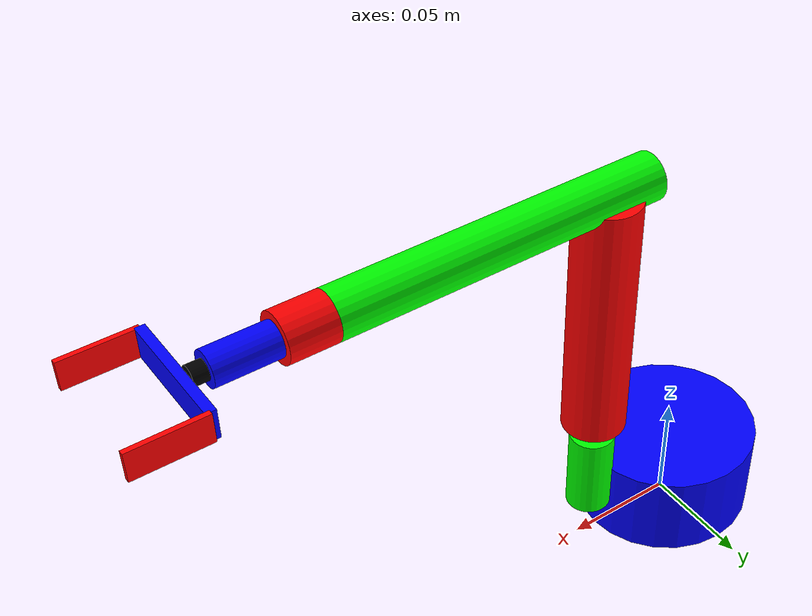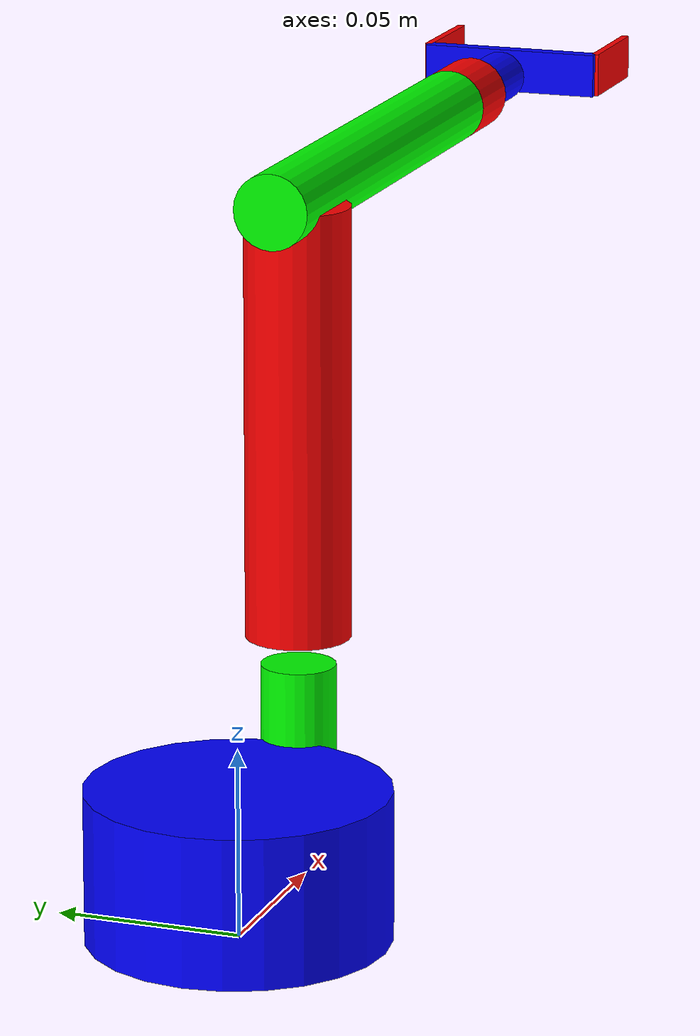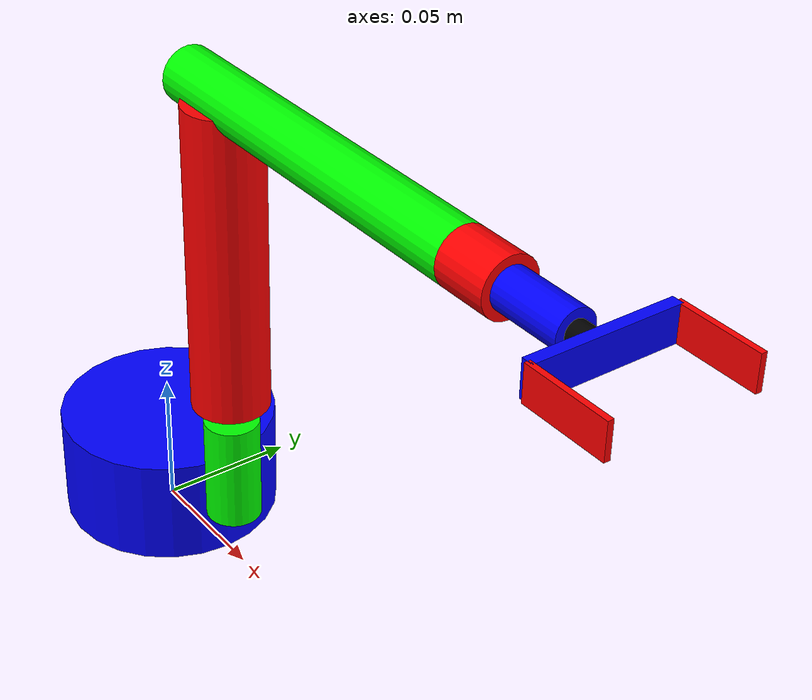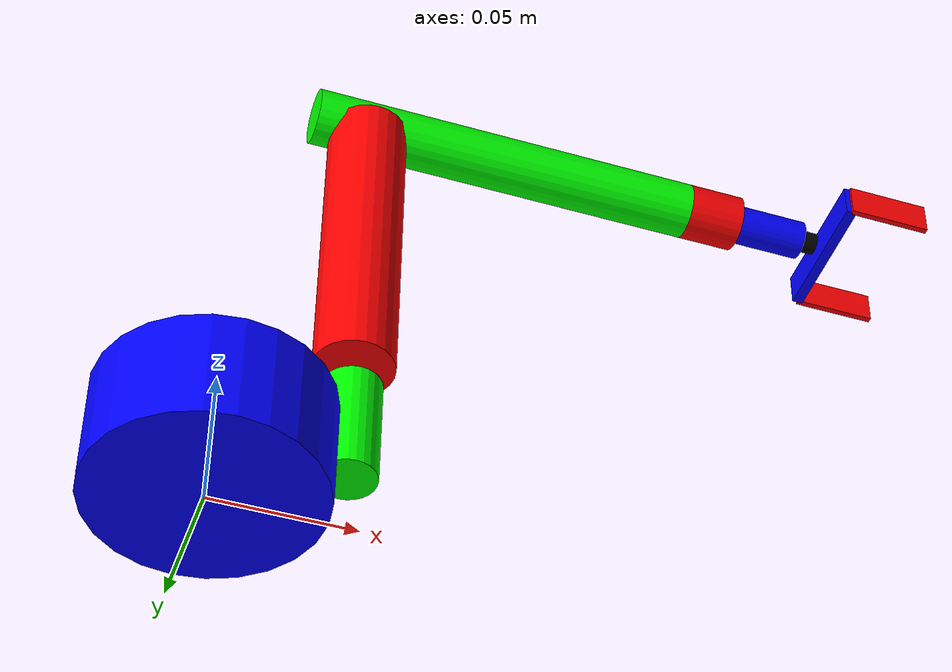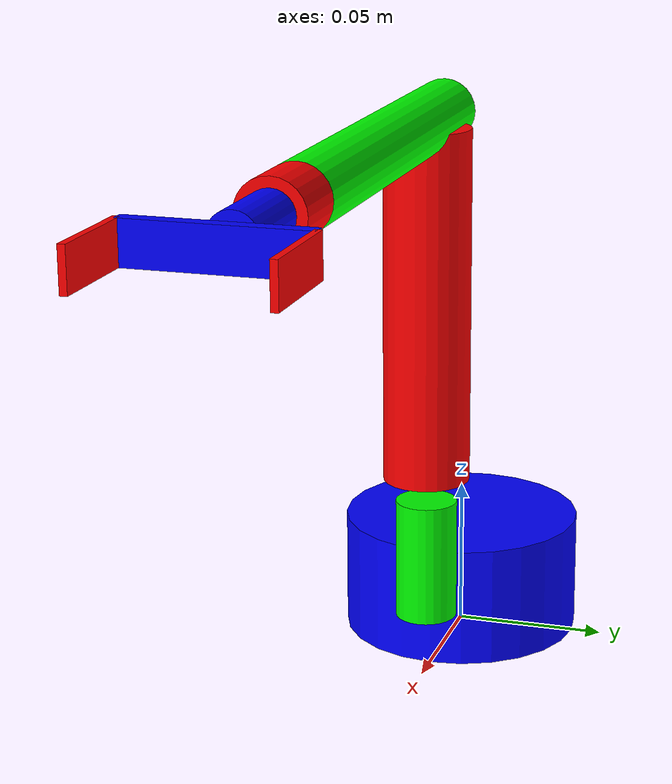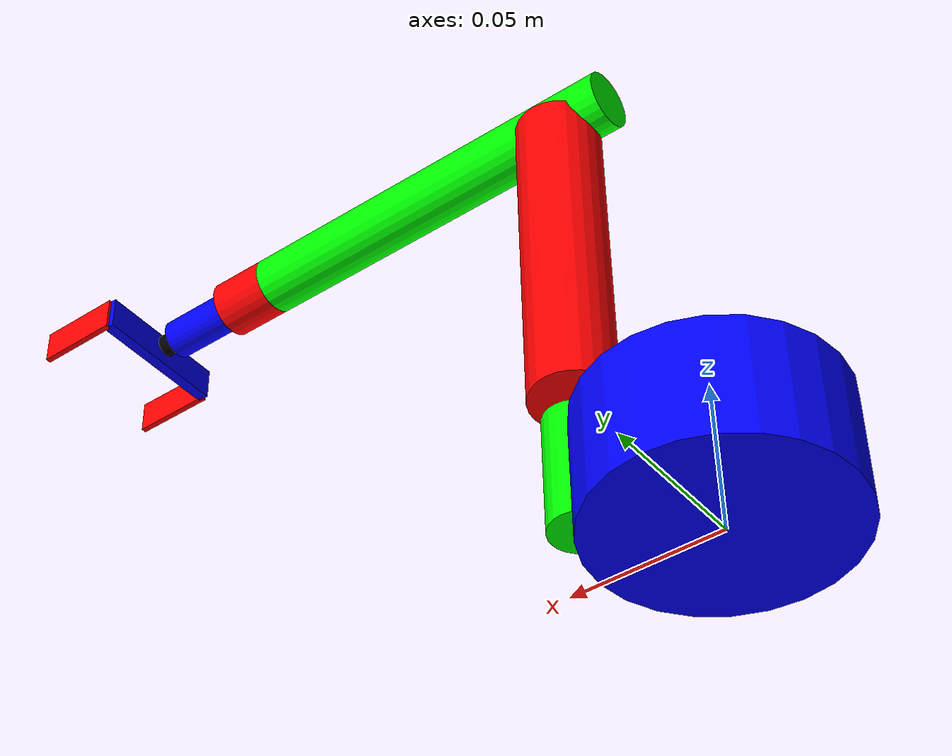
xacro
<?xml version='1.0'?>

<robot name="generic_arm" xmlns:xacro="http://www.ros.org/wiki/xacro">

  <!-- Common design Properties-->
  <xacro:include filename="$(find arm_description)/urdf/robots/generic_arm/configuration.urdf.xacro" />

  <!-- If we use simulation include Gazebo Stuff - gazebo_ros_control -->
  <xacro:if value="$(arg sim)">

      <!-- Gazebo ros control && gazebo grasp plugin -->
      <xacro:include filename="$(find arm_description)/urdf/robots/generic_arm/generic_arm_robot.gazebo.xacro" />

  </xacro:if>

  <!-- Incude Inertia macros -->
  <xacro:include filename="$(find arm_description)/urdf/macros/inertia_macros.urdf.xacro" />

  <!-- Include Generic Arm -->
  <xacro:include filename="$(find arm_description)/urdf/arms/generic_arm/generic_arm.urdf.xacro" />

  <!-- Include Generic Gripper -->
  <xacro:include filename="$(find arm_description)/urdf/grippers/generic_gripper/generic_gripper.urdf.xacro" />

  <link name="world"/>

  <!-- Instanciate the Generic Arm macros -->

  <!-- connect arm -->
  <xacro:generic_arm
    prefix=""
    parent="${generic_arm_parent}"
    transmission_hw_interface="${transmission_hw_interface}"
    safety_limits="${safety_limits}"
    safety_pos_margin="${safety_pos_margin}"
    safety_k_position="${safety_k_position}"/>

  <!-- connect gripper-->
  <xacro:generic_gripper
    prefix=""
    parent="${generic_gripper_parent}"
    transmission_hw_interface="${transmission_hw_interface}"
    safety_limits="${safety_limits}"
    safety_pos_margin="${safety_pos_margin}"
    safety_k_position="${safety_k_position}"/>

</robot>

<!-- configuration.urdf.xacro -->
<robot xmlns:xacro="http://www.ros.org/wiki/xacro">

  <!-- Include or Not Gazebo Files-->
  <xacro:arg name="sim" default="true"/>

  <!-- PI Value -->
  <xacro:property name="M_PI" value="3.141592653" />

  <xacro:property name="prefix" value="" />

  <!-- Hardware Interface e.g Pos Eff -->
  <xacro:property name="transmission_hw_interface" value="hardware_interface/PositionJointInterface" />

  <!-- enable safety limits -->
  <xacro:property name="safety_limits" value="false" />
  <xacro:property name="safety_pos_margin" value="0.15" />
  <xacro:property name="safety_k_position" value="20" />

  <!-- Generic Arm Connect -->
  <xacro:property name="generic_arm_parent" value="world" />
  <xacro:property name="generic_arm_joint_origin">
    <origin xyz="0.0 0.0 0.0" rpy="0 0 0" />
  </xacro:property>

  <!-- Generic Gripper Connect -->
  <xacro:property name="generic_gripper_parent" value="wrist_3_link" />

  <!-- Inertia parameters -->
  <xacro:property name="use_dummy_inertial" value="false" />
    <!-- Arm -->
    <xacro:property name="arm_base_mass" value="4.0" />
    <xacro:property name="shoulder_mass" value="7.778" />
    <xacro:property name="upper_arm_mass" value="12.93" />
    <xacro:property name="forearm_mass" value="3.87" />
    <xacro:property name="wrist_1_mass" value="1.96" />
    <xacro:property name="wrist_2_mass" value="1.96" />
    <xacro:property name="wrist_3_mass" value="0.202" />
    <!-- Gripper -->
    <xacro:property name="ee_base_mass" value="0.1" />
    <xacro:property name="finger1_mass" value="0.1" />
    <xacro:property name="finger2_mass" value="0.1" />

  <!-- Link sizes -->

  <!-- Factor to reduce the collision dimensions by -->
  <xacro:property name="collision_factor" value="0.5" />

    <!-- Arm -->
    <xacro:property name="arm_base_length" value="0.04" />
    <xacro:property name="arm_base_radius" value="0.04" />

    <xacro:property name="shoulder_length" value="0.04" />
    <xacro:property name="shoulder_radius" value="0.01" />

    <xacro:property name="upper_arm_length" value="0.115" />
    <xacro:property name="upper_arm_radius" value="0.014" />

    <xacro:property name="forearm_length" value="0.142" />
    <xacro:property name="forearm_radius" value="0.01" />

    <xacro:property name="wrist_1_length" value="0.02" />
    <xacro:property name="wrist_1_radius" value="0.01" />

    <xacro:property name="wrist_2_length" value="0.026" />
    <xacro:property name="wrist_2_radius" value="0.007" />

    <xacro:property name="wrist_3_length" value="0.006" />
    <xacro:property name="wrist_3_radius" value="0.004" />

    <!-- Gripper -->
    <xacro:property name="ee_base_x" value="0.012" />
    <xacro:property name="ee_base_y" value="0.004" />
    <xacro:property name="ee_base_z" value="0.05" />

    <xacro:property name="finger1_x" value="0.012" />
    <xacro:property name="finger1_y" value="0.002" />
    <xacro:property name="finger1_z" value="0.03" />

    <xacro:property name="finger2_x" value="0.012" />
    <xacro:property name="finger2_y" value="0.002" />
    <xacro:property name="finger2_z" value="0.03" />

  <!-- Arm Limits -->
  <xacro:property name="shoulder_pan_lower_limit" value="${-M_PI/2}" />
  <xacro:property name="shoulder_pan_upper_limit" value="${M_PI/2}" />
  <xacro:property name="shoulder_lift_lower_limit" value="${-M_PI/2}" />
  <xacro:property name="shoulder_lift_upper_limit" value="${M_PI/2}" />
  <xacro:property name="elbow_lower_limit" value="${-M_PI/4}" /> <!--LIMIT FOR DEPEDETED SERVO-->
  <xacro:property name="elbow_upper_limit" value="${M_PI/4}" />
  <xacro:property name="wrist_1_upper_limit" value="${M_PI/2}" />
  <xacro:property name="wrist_1_lower_limit" value="${-M_PI/2}" />
  <xacro:property name="wrist_2_upper_limit" value="${M_PI/2}" />
  <xacro:property name="wrist_2_lower_limit" value="${-M_PI/2}" />
  <xacro:property name="wrist_3_upper_limit" value="${M_PI/2}" />
  <xacro:property name="wrist_3_lower_limit" value="${-M_PI/2}" />

  <!-- Gripper Limits -->
  <xacro:property name="finger1_lower_limit" value="0.0" />
  <xacro:property name="finger1_upper_limit" value="0.025" />
  <xacro:property name="finger2_lower_limit" value="0.0" />
  <xacro:property name="finger2_upper_limit" value="0.025" />

  <!-- Arm Joint Axis -->
  <xacro:property name="shoulder_pan_joint_axis">
    <axis xyz="0 0 1"/>
  </xacro:property>
  <xacro:property name="shoulder_lift_joint_axis">
    <axis xyz="0 1 0"/>
  </xacro:property>
  <xacro:property name="elbow_joint_axis">
    <axis xyz="0 1 0"/>
  </xacro:property>
  <xacro:property name="wrist_1_joint_axis">
    <axis xyz="0 0 1"/>
  </xacro:property>
  <xacro:property name="wrist_2_joint_axis">
    <axis xyz="0 1 0"/>
  </xacro:property>
  <xacro:property name="wrist_3_joint_axis">
    <axis xyz="0 0 1"/>
  </xacro:property>

  <!-- Gripper Joint Axis -->
  <xacro:property name="finger1_joint_axis">
    <axis xyz="0 1 0"/>
  </xacro:property>
  <xacro:property name="finger2_joint_axis">
    <axis xyz="0 1 0"/>
  </xacro:property>

  <!-- Arm Origings -->
  <xacro:property name="arm_base_origin">
    <origin xyz="0.0 0.0 0.02" rpy="0 0 0" />
  </xacro:property>
  <xacro:property name="arm_base_joint_origin">
    <origin xyz="0.0 0.0 0.0" rpy="0 0 0" />
  </xacro:property>

  <xacro:property name="shoulder_origin">
    <origin xyz="0.045 0.0 0.02" rpy="0 0 0" />
  </xacro:property>
  <xacro:property name="shoulder_pan_joint_origin">
    <origin xyz="0.0 0.0 0.02" rpy="0 0 0" />
  </xacro:property>

  <xacro:property name="upper_arm_origin">
    <origin xyz="0.0 0.0 0.05525" rpy="0 0 0" />
  </xacro:property>
  <xacro:property name="shoulder_lift_joint_origin">
    <origin xyz="0.045 0.0 0.05" rpy="0 0 0" />
  </xacro:property>

  <xacro:property name="forearm_origin">
    <origin xyz="0.0 0.0 0.071" rpy="0 0 0" />
  </xacro:property>
  <xacro:property name="elbow_joint_origin">
    <origin xyz="-0.02 0.0 0.115" rpy="0 1.570 0" />
  </xacro:property>

  <xacro:property name="wrist_1_origin">
    <origin xyz="0.0 0.0 0.01" rpy="0 0 0" />
  </xacro:property>
  <xacro:property name="wrist_1_joint_origin">
    <origin xyz="0.0 0.0 0.142" rpy="0 0 0" />
  </xacro:property>

  <xacro:property name="wrist_2_origin">
    <origin xyz="0.0 0.0 0.013" rpy="0 0 0" />
  </xacro:property>
  <xacro:property name="wrist_2_joint_origin">
    <origin xyz="0.0 0.0 0.02" rpy="0 0 0" />
  </xacro:property>

  <xacro:property name="wrist_3_origin">
    <origin xyz="0.0 0.0 0.003" rpy="0 0 0" />
  </xacro:property>
  <xacro:property name="wrist_3_joint_origin">
    <origin xyz="0.0 0.0 0.026" rpy="0 0 0" />
  </xacro:property>

  <!-- Gripper Origings -->
  <xacro:property name="ee_base_origin">
    <origin xyz="0.0 0.0 0.004" rpy="${M_PI/2} 0 0" />
  </xacro:property>
  <xacro:property name="ee_base_joint_origin">
    <origin xyz="0.0 0.0 0.006" rpy="0 0 0" />
  </xacro:property>

  <xacro:property name="finger1_origin">
    <origin xyz="0.0 0.0 0.015" rpy="0 0 0" />
  </xacro:property>
  <xacro:property name="finger1_joint_origin">
    <origin xyz="0.0 -0.025 0.004" rpy="0 0 0" />
  </xacro:property>

  <xacro:property name="finger2_origin">
    <origin xyz="0.0 0.0 0.015" rpy="0 0 0" />
  </xacro:property>
  <xacro:property name="finger2_joint_origin">
    <origin xyz="0.0 0.025 0.004" rpy="0 0 ${M_PI}" />
  </xacro:property>

</robot>

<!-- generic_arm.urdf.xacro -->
<robot xmlns:xacro="http://www.ros.org/wiki/xacro">

  <!-- Include Inertia Macros -->
  <xacro:include filename="$(find arm_description)/urdf/macros/inertia_macros.urdf.xacro" />

  <!-- Include Transmissions -->
  <xacro:include filename="$(find arm_description)/urdf/arms/generic_arm/generic_arm.transmissions.xacro" />

  <!-- Instantiate Transmissions -->
  <xacro:generic_arm_transmission prefix="${prefix}" hw_interface="${transmission_hw_interface}" />

  <!-- If we use simulation include Gazebo Stuff -->
  <xacro:if value="$(arg sim)">

      <!-- Gazebo link properties -->
      <xacro:include filename="$(find arm_description)/urdf/arms/generic_arm/generic_arm.gazebo.xacro" />
      <!-- Instantiate it -->
      <xacro:generic_arm_gazebo prefix="${prefix}" />

  </xacro:if>

<!--Macro of the arm -->

<xacro:macro name="generic_arm" params="prefix parent
  transmission_hw_interface:=hardware_interface/PositionJointInterface
  safety_limits:=false safety_pos_margin:=0.15
  safety_k_position:=20">

  <link name="arm_footprint"/>

  <joint name="arm_joint" type="fixed">
    <parent link="${parent}"/>
    <child link="arm_footprint"/>
    <xacro:insert_block name="generic_arm_joint_origin" />
  </joint>

  <link name="${prefix}arm_base" >

    <visual>
      <xacro:insert_block name="arm_base_origin" />
      <geometry>
        <cylinder length = "${arm_base_length}" radius="${arm_base_radius}"/>
      </geometry>
      <material name="Blue">
        <color rgba="0.0 0.0 1.0 1.0"/>
      </material>
    </visual>

    <collision>
      <xacro:insert_block name="arm_base_origin" />
      <geometry>
        <cylinder length = "${arm_base_length * collision_factor}" radius="${arm_base_radius * collision_factor}"/>
      </geometry>
    </collision>
    <xacro:if value="${use_dummy_inertial}">
      <xacro:inertial_dummy>
        <xacro:insert_block name="arm_base_origin" />
      </xacro:inertial_dummy>
    </xacro:if>
    <xacro:unless value="${use_dummy_inertial}">
      <xacro:cylinder_inertial length = "${arm_base_length}" radius="${arm_base_radius}" mass="${arm_base_mass}">
        <xacro:insert_block name="arm_base_origin" />
      </xacro:cylinder_inertial>
    </xacro:unless>
  </link>

  <joint name="arm_footprint_joint" type="fixed">
    <parent link="arm_footprint"/>
    <child link="arm_base"/>
    <xacro:insert_block name="arm_base_joint_origin" />
  </joint>

  <!-- SHOULDER -->

  <link name="${prefix}shoulder_link" >
    <visual>
      <xacro:insert_block name="shoulder_origin" />
      <geometry>
        <cylinder length = "${shoulder_length}" radius="${shoulder_radius}"/>
      </geometry>
      <material name="Green">
        <color rgba="0.0 1.0 0.0 1.0"/>
      </material>
    </visual>
    <collision>
      <xacro:insert_block name="shoulder_origin" />
      <geometry>
        <cylinder length = "${shoulder_length * collision_factor}" radius="${shoulder_radius * collision_factor}"/>
      </geometry>
    </collision>
    <xacro:if value="${use_dummy_inertial}">
      <xacro:inertial_dummy>
        <xacro:insert_block name="shoulder_origin" />
      </xacro:inertial_dummy>
    </xacro:if>
    <xacro:unless value="${use_dummy_inertial}">
      <xacro:cylinder_inertial length = "${shoulder_length}" radius="${shoulder_radius}" mass="${shoulder_mass}">
        <xacro:insert_block name="shoulder_origin" />
      </xacro:cylinder_inertial>
    </xacro:unless>
  </link>

  <joint name="${prefix}shoulder_pan_joint" type="revolute">
    <parent link="${prefix}arm_base" />
    <child link = "${prefix}shoulder_link" />
    <xacro:insert_block name="shoulder_pan_joint_origin" />
    <xacro:insert_block name="shoulder_pan_joint_axis" />
    <limit lower="${shoulder_pan_lower_limit}" upper="${shoulder_pan_upper_limit}" effort="330.0" velocity="2.16"/>
    <xacro:if value="${safety_limits}">
      <safety_controller soft_lower_limit="${shoulder_pan_lower_limit + safety_pos_margin}" soft_upper_limit="${shoulder_pan_upper_limit - safety_pos_margin}" k_position="${safety_k_position}" k_velocity="0.0"/>
    </xacro:if>
    <dynamics damping="0.0" friction="0.0"/>
  </joint>

  <!--UPPER ARM -->

  <link name="${prefix}upper_arm_link" >
    <visual>
      <xacro:insert_block name="upper_arm_origin" />
      <geometry>
        <cylinder length = "${upper_arm_length}" radius="${upper_arm_radius}"/>
      </geometry>
      <material name="Red">
        <color rgba="1.0 0.0 0.0 1.0"/>
      </material>
    </visual>
    <collision>
      <xacro:insert_block name="upper_arm_origin" />
      <geometry>
        <cylinder length = "${upper_arm_length * collision_factor}" radius="${upper_arm_radius * collision_factor}"/>
      </geometry>
    </collision>
    <xacro:if value="${use_dummy_inertial}">
      <xacro:inertial_dummy>
        <xacro:insert_block name="upper_arm_origin" />
      </xacro:inertial_dummy>
    </xacro:if>
    <xacro:unless value="${use_dummy_inertial}">
      <xacro:cylinder_inertial length = "${upper_arm_length}" radius="${upper_arm_radius}" mass="${upper_arm_mass}">
        <xacro:insert_block name="upper_arm_origin" />
      </xacro:cylinder_inertial>
    </xacro:unless>
  </link>

  <joint name="${prefix}shoulder_lift_joint" type="revolute">
    <parent link="${prefix}shoulder_link" />
    <child link = "${prefix}upper_arm_link" />
    <xacro:insert_block name="shoulder_lift_joint_origin" />
    <xacro:insert_block name="shoulder_lift_joint_axis" />
    <limit lower="${shoulder_lift_lower_limit}" upper="${shoulder_lift_upper_limit}" effort="330.0" velocity="2.16"/>
    <xacro:if value="${safety_limits}">
      <safety_controller soft_lower_limit="${shoulder_lift_lower_limit + safety_pos_margin}" soft_upper_limit="${shoulder_lift_upper_limit - safety_pos_margin}" k_position="${safety_k_position}" k_velocity="0.0"/>
    </xacro:if>
    <dynamics damping="0.0" friction="0.0"/>
  </joint>

  <!--FOREARM -->

  <link name="${prefix}forearm_link" >
    <visual>
      <xacro:insert_block name="forearm_origin" />
      <geometry>
        <cylinder length = "${forearm_length}" radius="${forearm_radius}"/>
      </geometry>
      <material name="Green">
        <color rgba="0.0 1.0 0.0 1.0"/>
      </material>
    </visual>
    <collision>
      <xacro:insert_block name="forearm_origin" />
      <geometry>
        <cylinder length = "${forearm_length * collision_factor}" radius="${forearm_radius * collision_factor}"/>
      </geometry>
    </collision>
    <xacro:if value="${use_dummy_inertial}">
      <xacro:inertial_dummy>
        <xacro:insert_block name="forearm_origin" />
      </xacro:inertial_dummy>
    </xacro:if>
    <xacro:unless value="${use_dummy_inertial}">
      <xacro:cylinder_inertial length = "${forearm_length}" radius="${forearm_radius}" mass="${forearm_mass}">
        <xacro:insert_block name="forearm_origin" />
      </xacro:cylinder_inertial>
    </xacro:unless>
  </link>

  <joint name="${prefix}elbow_joint" type="revolute">
    <parent link="${prefix}upper_arm_link" />
    <child link = "${prefix}forearm_link" />
    <xacro:insert_block name="elbow_joint_origin" />
    <xacro:insert_block name="elbow_joint_axis" />
    <limit lower="${elbow_lower_limit}" upper="${elbow_upper_limit}" effort="330.0" velocity="2.16"/>
    <xacro:if value="${safety_limits}">
      <safety_controller soft_lower_limit="${elbow_lower_limit + safety_pos_margin}" soft_upper_limit="${elbow_upper_limit - safety_pos_margin}" k_position="${safety_k_position}" k_velocity="0.0"/>
    </xacro:if>
    <dynamics damping="0.0" friction="0.0"/>
  </joint>

 <!-- Wrist 1 link -->

  <link name="${prefix}wrist_1_link" >
    <visual>
      <xacro:insert_block name="wrist_1_origin" />
      <geometry>
        <cylinder length = "${wrist_1_length}" radius="${wrist_1_radius}"/>
      </geometry>
      <material name="Red">
        <color rgba="1.0 0.0 0.0 1.0"/>
      </material>
    </visual>
    <collision>
      <xacro:insert_block name="wrist_1_origin" />
      <geometry>
        <cylinder length = "${wrist_1_length * collision_factor}" radius="${wrist_1_radius * collision_factor}"/>
      </geometry>
    </collision>
    <xacro:if value="${use_dummy_inertial}">
      <xacro:inertial_dummy>
        <xacro:insert_block name="wrist_1_origin" />
      </xacro:inertial_dummy>
    </xacro:if>
    <xacro:unless value="${use_dummy_inertial}">
      <xacro:cylinder_inertial length = "${wrist_1_length}" radius="${wrist_1_radius}" mass="${wrist_1_mass}">
        <xacro:insert_block name="wrist_1_origin" />
      </xacro:cylinder_inertial>
    </xacro:unless>
  </link>

  <joint name="${prefix}wrist_1_joint" type="revolute">
    <parent link="${prefix}forearm_link" />
    <child link = "${prefix}wrist_1_link" />
    <xacro:insert_block name="wrist_1_joint_origin" />
    <xacro:insert_block name="wrist_1_joint_axis" />
    <limit lower="${wrist_1_lower_limit}" upper="${wrist_1_upper_limit}" effort="330.0" velocity="2.16"/>
    <xacro:if value="${safety_limits}">
      <safety_controller soft_lower_limit="${wrist_1_lower_limit + safety_pos_margin}" soft_upper_limit="${wrist_1_upper_limit - safety_pos_margin}" k_position="${safety_k_position}" k_velocity="0.0"/>
    </xacro:if>
    <dynamics damping="0.0" friction="0.0"/>
  </joint>

 <!-- Wrist 2 link -->

  <link name="${prefix}wrist_2_link" >
    <visual>
      <xacro:insert_block name="wrist_2_origin" />
      <geometry>
        <cylinder length = "${wrist_2_length}" radius="${wrist_2_radius}"/>
      </geometry>
      <material name="Blue">
        <color rgba="0.0 0.0 1.0 1.0"/>
      </material>
    </visual>
    <collision>
      <xacro:insert_block name="wrist_2_origin" />
      <geometry>
        <cylinder length = "${wrist_2_length * collision_factor}" radius="${wrist_2_radius * collision_factor}"/>
      </geometry>
    </collision>
    <xacro:if value="${use_dummy_inertial}">
      <xacro:inertial_dummy>
        <xacro:insert_block name="wrist_2_origin" />
      </xacro:inertial_dummy>
    </xacro:if>
    <xacro:unless value="${use_dummy_inertial}">
      <xacro:cylinder_inertial length = "${wrist_2_length}" radius="${wrist_2_radius}" mass="${wrist_2_mass}">
        <xacro:insert_block name="wrist_2_origin" />
      </xacro:cylinder_inertial>
    </xacro:unless>
  </link>

  <joint name="${prefix}wrist_2_joint" type="revolute">
    <parent link="${prefix}wrist_1_link" />
    <child link = "${prefix}wrist_2_link" />
    <xacro:insert_block name="wrist_2_joint_origin" />
    <xacro:insert_block name="wrist_2_joint_axis" />
    <limit lower="${wrist_2_lower_limit}" upper="${wrist_2_upper_limit}" effort="330.0" velocity="2.16"/>
    <xacro:if value="${safety_limits}">
      <safety_controller soft_lower_limit="${wrist_2_lower_limit + safety_pos_margin}" soft_upper_limit="${wrist_2_upper_limit - safety_pos_margin}" k_position="${safety_k_position}" k_velocity="0.0"/>
    </xacro:if>
    <dynamics damping="0.0" friction="0.0"/>
  </joint>

 <!-- Wrist 3 link -->

  <link name="${prefix}wrist_3_link" >
    <visual>
      <xacro:insert_block name="wrist_3_origin" />
      <geometry>
        <cylinder length = "${wrist_3_length}" radius="${wrist_3_radius}"/>
      </geometry>
      <material name="Black">
        <color rgba="0.0 0.0 0.0 1.0"/>
      </material>
    </visual>
    <collision>
      <xacro:insert_block name="wrist_3_origin" />
      <geometry>
        <cylinder length = "${wrist_3_length * collision_factor}" radius="${wrist_3_radius * collision_factor}"/>
      </geometry>
    </collision>
    <xacro:if value="${use_dummy_inertial}">
      <xacro:inertial_dummy>
        <xacro:insert_block name="wrist_3_origin" />
      </xacro:inertial_dummy>
    </xacro:if>
    <xacro:unless value="${use_dummy_inertial}">
      <xacro:cylinder_inertial length = "${wrist_3_length}" radius="${wrist_3_radius}" mass="${wrist_3_mass}">
        <xacro:insert_block name="wrist_3_origin" />
      </xacro:cylinder_inertial>
    </xacro:unless>
  </link>

  <joint name="${prefix}wrist_3_joint" type="revolute">
    <parent link="${prefix}wrist_2_link" />
    <child link = "${prefix}wrist_3_link" />
    <xacro:insert_block name="wrist_3_joint_origin" />
    <xacro:insert_block name="wrist_3_joint_axis" />
    <limit lower="${wrist_2_lower_limit}" upper="${wrist_2_upper_limit}" effort="330.0" velocity="2.16"/>
    <xacro:if value="${safety_limits}">
      <safety_controller soft_lower_limit="${wrist_2_lower_limit + safety_pos_margin}" soft_upper_limit="${wrist_2_upper_limit - safety_pos_margin}" k_position="${safety_k_position}" k_velocity="0.0"/>
    </xacro:if>
    <dynamics damping="0.0" friction="0.0"/>
  </joint>

</xacro:macro>

</robot>

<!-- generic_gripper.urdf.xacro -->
<robot xmlns:xacro="http://www.ros.org/wiki/xacro">

  <!-- Include Inertia Macros -->
  <xacro:include filename="$(find arm_description)/urdf/macros/inertia_macros.urdf.xacro" />

  <!-- Include Transmissions -->
  <xacro:include filename="$(find arm_description)/urdf/grippers/generic_gripper/generic_gripper.transmissions.xacro" />

  <!-- Instantiate Transmissions -->
  <xacro:generic_gripper_transmission prefix="${prefix}" hw_interface="${transmission_hw_interface}" />

  <!-- If we use simulation include Gazebo Stuff -->
  <xacro:if value="$(arg sim)">

      <!-- Gazebo gripper -->
      <xacro:include filename="$(find arm_description)/urdf/grippers/generic_gripper/generic_gripper.gazebo.xacro" />
       <xacro:generic_gripper_gazebo prefix="${prefix}" />

  </xacro:if>

<xacro:property name="m_ee" value="0.01" />
<xacro:property name="m_f1" value="0.01" />
<xacro:property name="m_f2" value="0.01" />

<xacro:macro name="generic_gripper" params="prefix parent
  transmission_hw_interface:=hardware_interface/PositionJointInterface
  safety_limits:=false safety_pos_margin:=0.15
  safety_k_position:=20">

  <link name="${prefix}ee_base" >

    <visual>
      <xacro:insert_block name="ee_base_origin" />
      <geometry>
        <box size = "${ee_base_x} ${ee_base_y} ${ee_base_z}"/>
      </geometry>
      <material name="Blue">
        <color rgba="0.0 0.0 1.0 1.0"/>
      </material>
    </visual>

    <collision>
      <xacro:insert_block name="ee_base_origin" />
      <geometry>
        <box size = "${ee_base_x * collision_factor} ${ee_base_y * collision_factor} ${ee_base_z * collision_factor}"/>
      </geometry>
    </collision>
    <xacro:if value="${use_dummy_inertial}">
      <xacro:inertial_dummy>
        <xacro:insert_block name="ee_base_origin" />
      </xacro:inertial_dummy>
    </xacro:if>
    <xacro:unless value="${use_dummy_inertial}">
      <xacro:box_inertial x = "${ee_base_x}" y = "${ee_base_y}" z = "${ee_base_z}" mass="${ee_base_mass}">
        <xacro:insert_block name="ee_base_origin" />
      </xacro:box_inertial>
    </xacro:unless>
  </link>

  <joint name="ee_footprint_joint" type="fixed">
    <parent link="${parent}"/>
    <child link="${prefix}ee_base"/>
    <xacro:insert_block name="ee_base_joint_origin" />
  </joint>

  <link name="${prefix}finger1" >

    <visual>
      <xacro:insert_block name="finger1_origin" />
      <geometry>
        <box size = "${finger1_x} ${finger1_y} ${finger1_z}"/>
      </geometry>
      <material name="Red">
        <color rgba="1.0 0.0 0.0 1.0"/>
      </material>
    </visual>

    <collision>
      <xacro:insert_block name="finger1_origin" />
      <geometry>
        <box size = "${finger1_x * collision_factor} ${finger1_y * collision_factor} ${finger1_z * collision_factor}"/>
      </geometry>
    </collision>
    <xacro:if value="${use_dummy_inertial}">
      <xacro:inertial_dummy>
        <xacro:insert_block name="finger1_origin" />
      </xacro:inertial_dummy>
    </xacro:if>
    <xacro:unless value="${use_dummy_inertial}">
      <xacro:box_inertial x = "${finger1_x}" y = "${finger1_y}" z = "${finger1_z}" mass="${finger1_mass}">
        <xacro:insert_block name="finger1_origin" />
      </xacro:box_inertial>
    </xacro:unless>
  </link>

  <joint name="${prefix}finger1_joint" type="prismatic">
    <parent link="${prefix}ee_base" />
    <child link = "${prefix}finger1" />
    <xacro:insert_block name="finger1_joint_origin" />
    <xacro:insert_block name="finger1_joint_axis" />
    <limit lower="${finger1_lower_limit}" upper="${finger1_upper_limit}" effort="330.0" velocity="2.16"/>
    <xacro:if value="${safety_limits}">
      <safety_controller soft_lower_limit="${finger1_lower_limit + safety_pos_margin}" soft_upper_limit="${finger1_upper_limit - safety_pos_margin}" k_position="${safety_k_position}" k_velocity="0.0"/>
    </xacro:if>
    <dynamics damping="0.0" friction="0.0"/>
  </joint>

  <link name="${prefix}finger2" >

    <visual>
      <xacro:insert_block name="finger2_origin" />
      <geometry>
        <box size = "${finger2_x} ${finger2_y} ${finger2_z}"/>
      </geometry>
      <material name="Red">
        <color rgba="1.0 0.0 0.0 1.0"/>
      </material>
    </visual>

    <collision>
      <xacro:insert_block name="finger2_origin" />
      <geometry>
        <box size = "${finger2_x * collision_factor} ${finger2_y * collision_factor} ${finger2_z * collision_factor}"/>
      </geometry>
    </collision>
    <xacro:if value="${use_dummy_inertial}">
      <xacro:inertial_dummy>
        <xacro:insert_block name="finger2_origin" />
      </xacro:inertial_dummy>
    </xacro:if>
    <xacro:unless value="${use_dummy_inertial}">
      <xacro:box_inertial x = "${finger2_x}" y = "${finger2_y}" z = "${finger2_z}" mass="${finger2_mass}">
        <xacro:insert_block name="finger2_origin" />
      </xacro:box_inertial>
    </xacro:unless>
  </link>

  <joint name="${prefix}finger2_joint" type="prismatic">
    <parent link="${prefix}ee_base" />
    <child link = "${prefix}finger2" />
    <xacro:insert_block name="finger2_joint_origin" />
    <xacro:insert_block name="finger2_joint_axis" />
    <limit lower="${finger2_lower_limit}" upper="${finger2_upper_limit}" effort="330.0" velocity="2.16"/>
    <xacro:if value="${safety_limits}">
      <safety_controller soft_lower_limit="${finger2_lower_limit + safety_pos_margin}" soft_upper_limit="${finger2_upper_limit - safety_pos_margin}" k_position="${safety_k_position}" k_velocity="0.0"/>
    </xacro:if>
    <dynamics damping="0.0" friction="0.0"/>
  </joint>

  </xacro:macro>

</robot>
